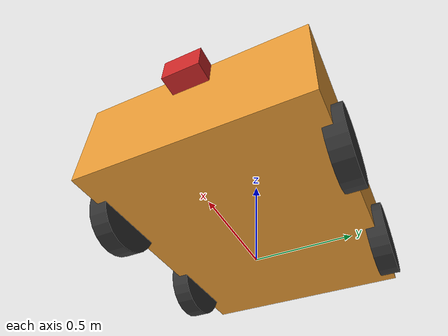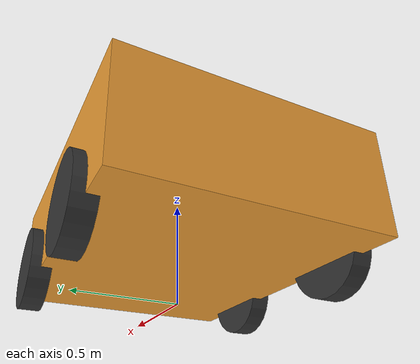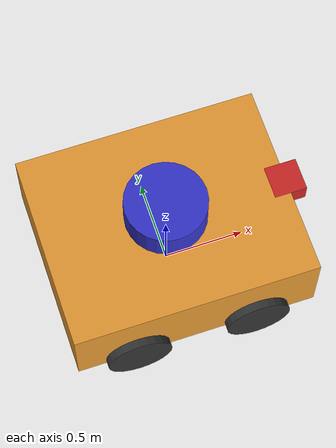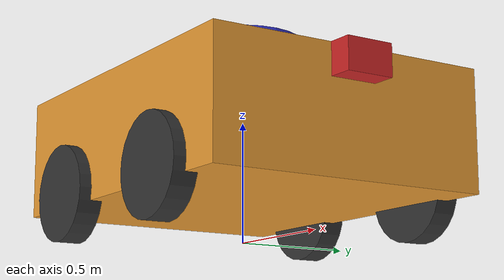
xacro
<!-- 主文件 -->

<robot xmlns:xacro="http://www.ros.org/wiki/xacro" name="car">
    <xacro:include filename="car_base.urdf.xacro"/>
    <xacro:include filename="car_camera.urdf.xacro"/>
    <xacro:include filename="car_laser.urdf.xacro"/>

    <!-- 插件 -->
    <xacro:include filename="car_ros2_control.xacro"/>

</robot>

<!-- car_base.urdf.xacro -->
<!-- 底盘实现 -->

<robot xmlns:xacro="http://www.ros.org/wiki/xacro">
    <!-- 包含计算 惯性矩阵 的 xacro -->
    <xacro:include filename="common_inertial.xacro"/>

    <!-- 声明变量 -->
    <xacro:property name = "PI" value = "3.1415927"/>
    <xacro:property name = "car_length" value = "1.5"/>
    <xacro:property name = "car_width" value = "1.2"/>
    <xacro:property name = "car_height" value = "0.5"/>
    <xacro:property name = "car_base_weight" value = "30.0"/>
    <xacro:property name = "wheel_radius" value = "0.2"/>
    <xacro:property name = "wheel_width" value = "0.1"/>
    <xacro:property name = "wheel_weight" value = "20.0"/>
    <xacro:property name = "car_to_floor_distance" value = "0.15"/>
    <!-- 轮胎距离底盘的偏移量 -->
    <xacro:property name = "wheel_joint_x" value = "${car_length / 4}"/>
    <xacro:property name = "wheel_joint_y" value = "${car_width / 2}"/>
    <xacro:property name = "wheel_joint_z" value = "${-(car_to_floor_distance + car_height / 2 - wheel_radius)}"/>
    <!-- 颜色设为全局变量 -->
    <material name="yellow">
        <color rgba="0.9 0.6 0.2 1.0"/>
    </material>
    <material name="black">
        <color rgba="0.2 0.2 0.2 1.0"/>
    </material>

    <!-- 设置 base_footprint -->
     <link name="base_footprint">
        <visual>
            <geometry>
                <sphere radius="0.001"/>
            </geometry>
        </visual>
    </link>
    <!-- 设置 base_link -->
    <link name="base_link">
        <visual>
            <geometry>
                <box size="${car_length} ${car_width} ${car_height}"/>
            </geometry>
            <material name="yellow"/>
        </visual>
        <collision>
            <geometry>
                <box size="${car_length + 0.01} ${car_width + 0.01} ${car_height + 0.01}"/>
            </geometry>
        </collision>
        <!-- 添加质量和惯性 -->
        <xacro:box_inertia m = "${car_base_weight}" l = "${car_length}" w = "${car_width}" h = "${car_height}"
                           xyz = "0 0 0" rpy = "0 0 0" />
    </link>

    <!-- 使用 joint 关联 1和2 -->
    <joint name="base_link_to_base_footprint" type="fixed">
        <parent link="base_footprint"/>
        <child link="base_link"/>
        <!-- 底盘偏移量，离地距离 -->
        <origin xyz="0.0 0.0 ${car_to_floor_distance + (car_height + 0.001)/2}"/>
    </joint>

    <!-- 设置 gazebo 标签 -->
    <gazebo reference = "base_link">
        <material>Gazebo/Yellow</material>
        <gravity>true</gravity>
    </gazebo>

    <!-- 定义车轮相关的宏 -->
    <!-- 宏（函数）创建规则：封装可被复用的代码，要变的数据以参数的方式传入 -->
    <xacro:macro name = "wheel_and_joint" params = "link_name left_flag front_flag">
        <!-- 添加一个车轮 -->
        <link name="${link_name}">
            <visual>
                <geometry>
                    <cylinder radius="${wheel_radius}" length="${wheel_width}"/>
                </geometry>
                <material name="black"/>
                <!-- 车轮翻滚90度 -->
                <origin rpy="${PI / 2} 0.0 0.0"/>
            </visual>
            <collision>
                <geometry>
                    <cylinder radius="${wheel_radius + 0.01}" length="${wheel_width + 0.01}"/>
                </geometry>
                <!-- 车轮翻滚90度 -->
                <origin rpy="${PI / 2} 0.0 0.0"/>
            </collision>
            <!-- 添加质量和惯性 -->
            <xacro:cylinder_inertia m = "${wheel_weight}" r = "${wheel_radius}" h = "${wheel_width}"
                                    xyz = "0 0 0" rpy = "${PI / 2} 0.0 0.0" />
        </link>

        <!-- 将车轮与 base_link 关联 -->
        <joint name="${link_name}_to_base_link" type="continuous">
            <parent link="base_link"/>
            <child link="${link_name}"/>
            <!-- 车轮相对于底盘的位置 -->
            <origin xyz="${wheel_joint_x * front_flag} ${wheel_joint_y * left_flag} ${wheel_joint_z}"/>
            <!-- 车轮旋转 -->
            <axis xyz="0 1 0"/>
        </joint>

        <!-- 设置 gazebo 标签 -->
        <gazebo reference = "${link_name}">
            <material>Gazebo/Grey</material>
            <!-- 摩擦系数，值越小阻力越小 -->
            <mu1 value = "20.0"/>
            <mu2 value = "20.0"/>
            <kp value="1000000000.0" />
            <kd value="1.0" />

            <!-- 增大地面摩擦力，避免打滑 -->
            <friction>5.0</friction>
            <!-- 降低滚动摩擦 -->
            <rolling_friction>0.01</rolling_friction>
            <!-- 适度阻尼，避免车轮抖动 -->
            <damping>0.5</damping>
        </gazebo>
    </xacro:macro>

    <!-- 调用宏，生成多个车轮，并与 base_link 关联 -->
    <xacro:wheel_and_joint link_name = "left_back" left_flag = "1" front_flag = "-1"/>
    <xacro:wheel_and_joint link_name = "left_front" left_flag = "1" front_flag = "1"/>
    <xacro:wheel_and_joint link_name = "right_back" left_flag = "-1" front_flag = "-1"/>
    <xacro:wheel_and_joint link_name = "right_front" left_flag = "-1" front_flag = "1"/>
</robot>

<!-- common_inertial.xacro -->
<!-- 惯性矩阵 -->

<robot xmlns:xacro="http://www.ros.org/wiki/xacro">

    <!-- 立方体惯性矩阵 -->
    <xacro:macro name="box_inertia" params="m l w h xyz rpy">
        <inertial>
            <!-- 重心偏移：一般与 visual 里面的 origin 参数保持一致 -->
            <origin xyz="${xyz}" rpy="${rpy}"/>
            <!-- 质量 -->
            <mass value="${m}" />
            <!-- 惯性矩阵 -->
            <inertia ixx="${(m/12) * (h*h + l*l)}" ixy="0.0" ixz="0.0"
                     iyy="${(m/12) * (w*w + l*l)}" iyz="0.0"
                     izz="${(m/12) * (w*w + h*h)}" />
        </inertial>
    </xacro:macro>

    <!-- 圆柱体惯性矩阵 -->
    <xacro:macro name="cylinder_inertia" params="m r h xyz rpy">
        <inertial>
            <!-- 重心偏移：一般与 visual 里面的 origin 参数保持一致 -->
            <origin xyz="${xyz}" rpy="${rpy}"/>
            <!-- 质量 -->
            <mass value="${m}" />
            <!-- 惯性矩阵 -->
            <inertia ixx="${(m/12) * (3*r*r + h*h)}" ixy="0" ixz="0"
                     iyy="${(m/12) * (3*r*r + h*h)}" iyz="0"
                     izz="${(m/2) * (r*r)}" />
        </inertial>
    </xacro:macro>

    <!-- 球体惯性矩阵 -->
    <xacro:macro name="sphere_inertia" params="m r xyz rpy">
        <inertial>
            <!-- 重心偏移：一般与 visual 里面的 origin 参数保持一致 -->
            <origin xyz="${xyz}" rpy="${rpy}"/>
            <!-- 质量 -->
            <mass value="${m}" />
            <!-- 惯性矩阵 -->
            <inertia ixx="${(2/5) * m * (r*r)}" ixy="0.0" ixz="0.0"
                     iyy="${(2/5) * m * (r*r)}" iyz="0.0"
                     izz="${(2/5) * m * (r*r)}" />
        </inertial>
    </xacro:macro>

</robot>

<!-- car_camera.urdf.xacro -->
<!-- 摄像头实现 -->

<robot xmlns:xacro="http://www.ros.org/wiki/xacro">
    <!-- 声明变量 -->
    <xacro:property name = "camera_length" value = "0.2"/>
    <xacro:property name = "camera_width" value = "0.2"/>
    <xacro:property name = "camera_height" value = "0.13"/>
    <xacro:property name = "camera_weight" value = "2.0"/>
    <!-- camera 距离 base_link 的偏移量 -->
    <xacro:property name = "camera_joint_x" value = "${car_length / 2}"/>
    <xacro:property name = "camera_joint_y" value = "0.0"/>
    <xacro:property name = "camera_joint_z" value = "${(car_height - camera_height) / 2}"/>

    <!-- 设置 camera + joint -->
    <link name="camera">
        <visual>
            <geometry>
                <box size="${camera_length} ${camera_width} ${camera_height}"/>
            </geometry>
        </visual>
        <collision>
            <geometry>
                <box size="${camera_length + 0.01} ${camera_width + 0.01} ${camera_height + 0.01}"/>
            </geometry>
        </collision>
        <!-- 添加质量和惯性 -->
        <xacro:box_inertia m = "${camera_weight}" l = "${camera_length}" w = "${camera_width}" h = "${camera_height}"
                           xyz = "0 0 0" rpy = "0 0 0" />
    </link>

    <!-- 将 camera 与 base_link 关联 -->
    <joint name="camera_to_base_link" type="fixed">
        <parent link="base_link"/>
        <child link="camera"/>
        <origin xyz="${camera_joint_x} ${camera_joint_y} ${camera_joint_z}"/>
    </joint>

    <!-- 设置 gazebo 标签 -->
    <gazebo reference = "camera">
        <material>Gazebo/Red</material>
        <!-- 设置传感器 -->
        <sensor name = "camera_sensor" type = "camera">
            <!-- 传感器相对于 camera 的 xyz + rpy -->
            <pose>0 0 0 0 0 0</pose>
            <!-- 在 gazebo 上可视化相机所拍摄到的内容 -->
            <visualize>true</visualize>
            <!-- 更新频率 -->
            <update_rate>10</update_rate>

            <!-- 相机插件 -->
            <plugin name="camera_controller" filename="libgazebo_ros_camera.so">
                <!-- 选择 link 设置的名称 -->
                <frame_name>camera</frame_name>
            </plugin>
        </sensor>
    </gazebo>

</robot>

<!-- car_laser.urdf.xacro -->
<!-- 雷达实现 -->

<robot xmlns:xacro="http://www.ros.org/wiki/xacro">
    <!-- 声明变量 -->
    <xacro:property name = "laser_radius" value = "0.25"/>
    <xacro:property name = "laser_height" value = "0.2"/>
    <xacro:property name = "laser_weight" value = "4.0"/>
    <!-- laser 距离 base_link 的偏移量 -->
    <xacro:property name = "laser_joint_x" value = "0"/>
    <xacro:property name = "laser_joint_y" value = "0"/>
    <xacro:property name = "laser_joint_z" value = "${(laser_height + car_height) / 2}"/>
    <!-- 颜色 -->
    <material name = "blue">
        <color rgba="0.2 0.2 0.8 1.0"/>
    </material>

    <!-- 设置 laser + joint -->
    <link name = "laser">
        <visual>
            <geometry>
                <cylinder radius="${laser_radius}" length="${laser_height}"/>
            </geometry>
            <material name = "blue"/>
        </visual>
        <collision>
            <geometry>
                <cylinder radius="${laser_radius + 0.01}" length="${laser_height + 0.01}"/>
            </geometry>
        </collision>
        <!-- 添加质量和惯性 -->
        <xacro:cylinder_inertia m = "${laser_weight}" r = "${wheel_radius}" h = "${laser_height}"
                                xyz = "0 0 0" rpy = "0 0 0" />
    </link>

    <!-- 将 laser 与 base_link 关联 -->
    <joint name="laser_to_base_link" type="fixed">
        <parent link="base_link"/>
        <child link="laser"/>
        <origin xyz="${laser_joint_x} ${laser_joint_y} ${laser_joint_z}"/>
    </joint>

    <!-- 设置 gazebo 标签 -->
    <gazebo reference = "laser">
        <material>Gazebo/Blue</material>
        <!-- 设置传感器 -->
        <sensor name="laser_sensor" type="ray">
            <!-- 传感器相对于 laser 的 xyz + rpy -->
            <pose>0 0 0 0 0 0</pose>
            <!-- 一直开启 -->
            <always_on>true</always_on>
            <!-- 在 gazebo 上可视化相机所拍摄到的内容 -->
            <visualize>true</visualize>
            <!-- 更新频率 -->
            <update_rate>50</update_rate>

            <!-- laser 插件 -->
            <plugin name="laser_scanner" filename="libgazebo_ros_ray_sensor.so">
                <ros>
                    <namespace>/</namespace>
                    <!-- out 话题的重映射 -->
                    <remapping>~/out:=scan</remapping>
                </ros>
                <!-- 指定话题输出类型（消息接口） -->
                <output_type>sensor_msgs/LaserScan</output_type>
                <!-- 选择 link 设置的名称 -->
                <frame_name>laser</frame_name>
            </plugin>

            <!-- 激光传感器配置 -->
            <ray>
                <!-- 设置扫描范围 -->
                <scan>
                    <horizontal>
                        <!-- 采样点 -->
                        <samples>360</samples>
                        <!-- 分辨率 -->
                        <resolution>1.000000</resolution>
                        <!-- 最小和最大角度（弧度） -->
                        <min_angle>0</min_angle>
                        <max_angle>6.2831852</max_angle>
                    </horizontal>
                </scan>
                <!-- 设置扫描距离 -->
                <range>
                    <!-- min 就是 laser 的扫描盲区 -->
                    <min>0.5</min>
                    <max>8.0</max>
                    <!-- 分辨率，也是 laser 的精度 -->
                    <resolution>0.050000</resolution>
                </range>
                <!-- 设置噪声 -->
                <noise>
                    <!-- 高斯噪声、均值 和 标准差 -->
                    <type>gaussian</type>
                    <mean>0.0</mean>
                    <stddev>0.01</stddev>
                </noise>
            </ray>
        </sensor>
    </gazebo>
</robot>
